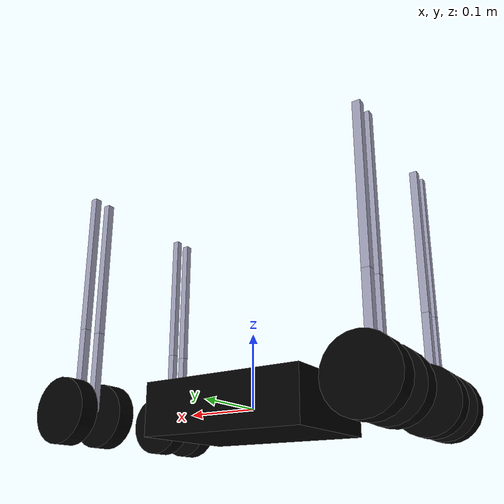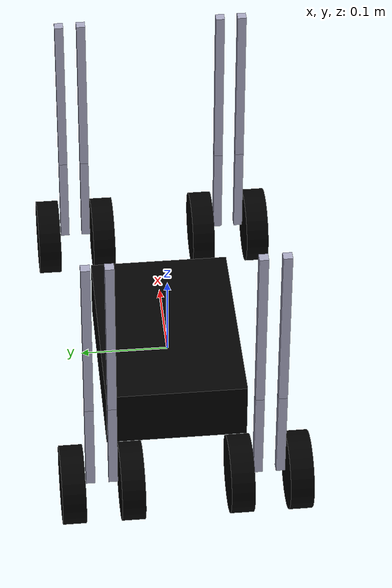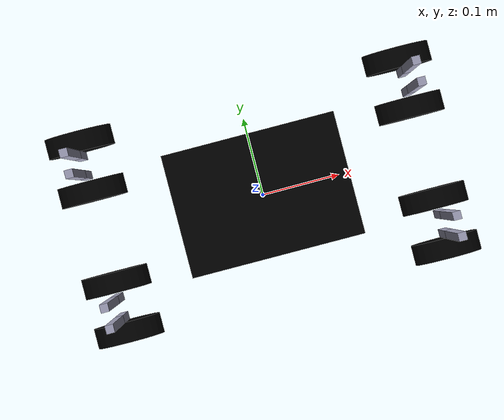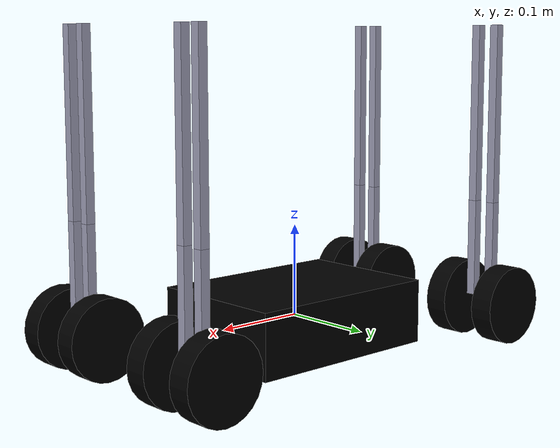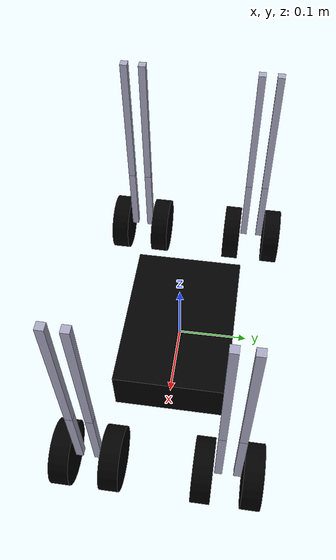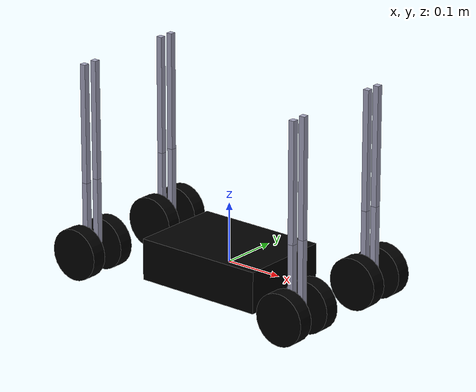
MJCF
<mujoco model="quadruped">
  <compiler angle="radian"/>

  <worldbody>
    <geom size="0.113 0.08 0.035" type="box" contype="0" conaffinity="0" group="1" density="0" rgba="0 0 0 1"/>
    <geom size="0.113 0.08 0.035" type="box" rgba="0 0 0 1"/>
    <body name="motor_front_rightR_link" pos="0.21 -0.125 0" quat="0.707123 0.70709 0 0">
      <inertial pos="0 0.01 -0.00333333" quat="0.811242 0.58471 0 0" mass="0.3" diaginertia="2.00017 2.00017 2"/>
      <joint name="motor_front_rightR_joint" pos="0 0 0" axis="0 0 1" actuatorfrcrange="-100 100"/>
      <geom size="0.0434 0.013" type="cylinder" contype="0" conaffinity="0" group="1" density="0" rgba="0 0 0 1"/>
      <geom size="0.0434 0.013" type="cylinder" rgba="0 0 0 1"/>
      <geom size="0.005 0.005 0.055" pos="0 0.06 -0.02" quat="0.707123 -0.70709 0 0" type="box" contype="0" conaffinity="0" group="1" density="0" rgba="0.65 0.65 0.75 1"/>
      <geom size="0.005 0.005 0.055" pos="0 0.06 -0.02" quat="0.707123 -0.70709 0 0" type="box" rgba="0.65 0.65 0.75 1"/>
      <body name="lower_leg_front_rightR_link" pos="0 0.115 -0.0199975" quat="0.707123 -0.70709 0 0">
        <inertial pos="0 0 0" mass="0.05" diaginertia="1 1 1"/>
        <joint name="knee_front_rightR_link" pos="0 0 0" axis="0 1 0" actuatorfrcrange="-100 100"/>
        <geom size="0.005 0.005 0.1" pos="0 0 0.1" type="box" contype="0" conaffinity="0" group="1" density="0" rgba="0.65 0.65 0.75 1"/>
        <geom size="0.005 0.005 0.1" pos="0 0 0.1" type="box" rgba="0.65 0.65 0.75 1"/>
      </body>
    </body>
    <body name="motor_front_rightL_link" pos="0.21 -0.06 0" quat="0.707123 0.70709 0 0">
      <inertial pos="0 0.01 0.00333333" quat="0.58471 0.811242 0 0" mass="0.3" diaginertia="2.00017 2.00017 2"/>
      <joint name="motor_front_rightL_joint" pos="0 0 0" axis="0 0 1" actuatorfrcrange="-100 100"/>
      <geom size="0.0434 0.013" type="cylinder" contype="0" conaffinity="0" group="1" density="0" rgba="0 0 0 1"/>
      <geom size="0.0434 0.013" type="cylinder" rgba="0 0 0 1"/>
      <geom size="0.005 0.005 0.055" pos="0 0.06 0.02" quat="0.707123 -0.70709 0 0" type="box" contype="0" conaffinity="0" group="1" density="0" rgba="0.65 0.65 0.75 1"/>
      <geom size="0.005 0.005 0.055" pos="0 0.06 0.02" quat="0.707123 -0.70709 0 0" type="box" rgba="0.65 0.65 0.75 1"/>
      <body name="lower_leg_front_rightL_link" pos="0 0.115 0.0200025" quat="0.707123 -0.70709 0 0">
        <inertial pos="0 0 0" mass="0.05" diaginertia="1 1 1"/>
        <joint name="knee_front_rightL_link" pos="0 0 0" axis="0 1 0" actuatorfrcrange="-100 100"/>
        <geom size="0.005 0.005 0.1" pos="0 0 0.1" type="box" contype="0" conaffinity="0" group="1" density="0" rgba="0.65 0.65 0.75 1"/>
        <geom size="0.005 0.005 0.1" pos="0 0 0.1" type="box" rgba="0.65 0.65 0.75 1"/>
      </body>
    </body>
    <body name="motor_front_leftR_link" pos="0.21 0.125 0" quat="0.707123 0.70709 0 0">
      <inertial pos="0 0.01 0.00333333" quat="0.58471 0.811242 0 0" mass="0.3" diaginertia="2.00017 2.00017 2"/>
      <joint name="motor_front_leftR_joint" pos="0 0 0" axis="0 0 1" actuatorfrcrange="-100 100"/>
      <geom size="0.0434 0.013" type="cylinder" contype="0" conaffinity="0" group="1" density="0" rgba="0 0 0 1"/>
      <geom size="0.0434 0.013" type="cylinder" rgba="0 0 0 1"/>
      <geom size="0.005 0.005 0.055" pos="0 0.06 0.02" quat="0.707123 -0.70709 0 0" type="box" contype="0" conaffinity="0" group="1" density="0" rgba="0.65 0.65 0.75 1"/>
      <geom size="0.005 0.005 0.055" pos="0 0.06 0.02" quat="0.707123 -0.70709 0 0" type="box" rgba="0.65 0.65 0.75 1"/>
      <body name="lower_leg_front_leftR_link" pos="0 0.115 0.0200025" quat="0.707123 -0.70709 0 0">
        <inertial pos="0 0 0" mass="0.05" diaginertia="1 1 1"/>
        <joint name="knee_front_leftR_link" pos="0 0 0" axis="0 1 0" actuatorfrcrange="-100 100"/>
        <geom size="0.005 0.005 0.1" pos="0 0 0.1" type="box" contype="0" conaffinity="0" group="1" density="0" rgba="0.65 0.65 0.75 1"/>
        <geom size="0.005 0.005 0.1" pos="0 0 0.1" type="box" rgba="0.65 0.65 0.75 1"/>
      </body>
    </body>
    <body name="motor_front_leftL_link" pos="0.21 0.06 0" quat="0.707123 0.70709 0 0">
      <inertial pos="0 0.01 -0.00333333" quat="0.811242 0.58471 0 0" mass="0.3" diaginertia="2.00017 2.00017 2"/>
      <joint name="motor_front_leftL_joint" pos="0 0 0" axis="0 0 1" actuatorfrcrange="-100 100"/>
      <geom size="0.0434 0.013" type="cylinder" contype="0" conaffinity="0" group="1" density="0" rgba="0 0 0 1"/>
      <geom size="0.0434 0.013" type="cylinder" rgba="0 0 0 1"/>
      <geom size="0.005 0.005 0.055" pos="0 0.06 -0.02" quat="0.707123 -0.70709 0 0" type="box" contype="0" conaffinity="0" group="1" density="0" rgba="0.65 0.65 0.75 1"/>
      <geom size="0.005 0.005 0.055" pos="0 0.06 -0.02" quat="0.707123 -0.70709 0 0" type="box" rgba="0.65 0.65 0.75 1"/>
      <body name="lower_leg_front_leftL_link" pos="0 0.115 -0.0199975" quat="0.707123 -0.70709 0 0">
        <inertial pos="0 0 0" mass="0.05" diaginertia="1 1 1"/>
        <joint name="knee_front_leftL_link" pos="0 0 0" axis="0 1 0" actuatorfrcrange="-100 100"/>
        <geom size="0.005 0.005 0.1" pos="0 0 0.1" type="box" contype="0" conaffinity="0" group="1" density="0" rgba="0.65 0.65 0.75 1"/>
        <geom size="0.005 0.005 0.1" pos="0 0 0.1" type="box" rgba="0.65 0.65 0.75 1"/>
      </body>
    </body>
    <body name="motor_back_rightR_link" pos="-0.21 -0.125 0" quat="0.707123 0.70709 0 0">
      <inertial pos="0 0.01 -0.00333333" quat="0.811242 0.58471 0 0" mass="0.3" diaginertia="2.00017 2.00017 2"/>
      <joint name="motor_back_rightR_joint" pos="0 0 0" axis="0 0 1" actuatorfrcrange="-100 100"/>
      <geom size="0.0434 0.013" type="cylinder" contype="0" conaffinity="0" group="1" density="0" rgba="0 0 0 1"/>
      <geom size="0.0434 0.013" type="cylinder" rgba="0 0 0 1"/>
      <geom size="0.005 0.005 0.055" pos="0 0.06 -0.02" quat="0.707123 -0.70709 0 0" type="box" contype="0" conaffinity="0" group="1" density="0" rgba="0.65 0.65 0.75 1"/>
      <geom size="0.005 0.005 0.055" pos="0 0.06 -0.02" quat="0.707123 -0.70709 0 0" type="box" rgba="0.65 0.65 0.75 1"/>
      <body name="lower_leg_back_rightR_link" pos="0 0.115 -0.0199975" quat="0.707123 -0.70709 0 0">
        <inertial pos="0 0 0" mass="0.05" diaginertia="1 1 1"/>
        <joint name="knee_back_rightR_link" pos="0 0 0" axis="0 1 0" actuatorfrcrange="-100 100"/>
        <geom size="0.005 0.005 0.1" pos="0 0 0.1" type="box" contype="0" conaffinity="0" group="1" density="0" rgba="0.65 0.65 0.75 1"/>
        <geom size="0.005 0.005 0.1" pos="0 0 0.1" type="box" rgba="0.65 0.65 0.75 1"/>
      </body>
    </body>
    <body name="motor_back_rightL_link" pos="-0.21 -0.06 0" quat="0.707123 0.70709 0 0">
      <inertial pos="0 0.01 0.00333333" quat="0.58471 0.811242 0 0" mass="0.3" diaginertia="2.00017 2.00017 2"/>
      <joint name="motor_back_rightL_joint" pos="0 0 0" axis="0 0 1" actuatorfrcrange="-100 100"/>
      <geom size="0.0434 0.013" type="cylinder" contype="0" conaffinity="0" group="1" density="0" rgba="0 0 0 1"/>
      <geom size="0.0434 0.013" type="cylinder" rgba="0 0 0 1"/>
      <geom size="0.005 0.005 0.055" pos="0 0.06 0.02" quat="0.707123 -0.70709 0 0" type="box" contype="0" conaffinity="0" group="1" density="0" rgba="0.65 0.65 0.75 1"/>
      <geom size="0.005 0.005 0.055" pos="0 0.06 0.02" quat="0.707123 -0.70709 0 0" type="box" rgba="0.65 0.65 0.75 1"/>
      <body name="lower_leg_back_rightL_link" pos="0 0.115 0.0200025" quat="0.707123 -0.70709 0 0">
        <inertial pos="0 0 0" mass="0.05" diaginertia="1 1 1"/>
        <joint name="knee_back_rightL_link" pos="0 0 0" axis="0 1 0" actuatorfrcrange="-100 100"/>
        <geom size="0.005 0.005 0.1" pos="0 0 0.1" type="box" contype="0" conaffinity="0" group="1" density="0" rgba="0.65 0.65 0.75 1"/>
        <geom size="0.005 0.005 0.1" pos="0 0 0.1" type="box" rgba="0.65 0.65 0.75 1"/>
      </body>
    </body>
    <body name="motor_back_leftR_link" pos="-0.21 0.125 0" quat="0.707123 0.70709 0 0">
      <inertial pos="0 0.01 0.00333333" quat="0.58471 0.811242 0 0" mass="0.3" diaginertia="2.00017 2.00017 2"/>
      <joint name="motor_back_leftR_joint" pos="0 0 0" axis="0 0 1" actuatorfrcrange="-100 100"/>
      <geom size="0.0434 0.013" type="cylinder" contype="0" conaffinity="0" group="1" density="0" rgba="0 0 0 1"/>
      <geom size="0.0434 0.013" type="cylinder" rgba="0 0 0 1"/>
      <geom size="0.005 0.005 0.055" pos="0 0.06 0.02" quat="0.707123 -0.70709 0 0" type="box" contype="0" conaffinity="0" group="1" density="0" rgba="0.65 0.65 0.75 1"/>
      <geom size="0.005 0.005 0.055" pos="0 0.06 0.02" quat="0.707123 -0.70709 0 0" type="box" rgba="0.65 0.65 0.75 1"/>
      <body name="lower_leg_back_leftR_link" pos="0 0.115 0.0200025" quat="0.707123 -0.70709 0 0">
        <inertial pos="0 0 0" mass="0.05" diaginertia="1 1 1"/>
        <joint name="knee_back_leftR_link" pos="0 0 0" axis="0 1 0" actuatorfrcrange="-100 100"/>
        <geom size="0.005 0.005 0.1" pos="0 0 0.1" type="box" contype="0" conaffinity="0" group="1" density="0" rgba="0.65 0.65 0.75 1"/>
        <geom size="0.005 0.005 0.1" pos="0 0 0.1" type="box" rgba="0.65 0.65 0.75 1"/>
      </body>
    </body>
    <body name="motor_back_leftL_link" pos="-0.21 0.06 0" quat="0.707123 0.70709 0 0">
      <inertial pos="0 0.01 -0.00333333" quat="0.811242 0.58471 0 0" mass="0.3" diaginertia="2.00017 2.00017 2"/>
      <joint name="motor_back_leftL_joint" pos="0 0 0" axis="0 0 1" actuatorfrcrange="-100 100"/>
      <geom size="0.0434 0.013" type="cylinder" contype="0" conaffinity="0" group="1" density="0" rgba="0 0 0 1"/>
      <geom size="0.0434 0.013" type="cylinder" rgba="0 0 0 1"/>
      <geom size="0.005 0.005 0.055" pos="0 0.06 -0.02" quat="0.707123 -0.70709 0 0" type="box" contype="0" conaffinity="0" group="1" density="0" rgba="0.65 0.65 0.75 1"/>
      <geom size="0.005 0.005 0.055" pos="0 0.06 -0.02" quat="0.707123 -0.70709 0 0" type="box" rgba="0.65 0.65 0.75 1"/>
      <body name="lower_leg_back_leftL_link" pos="0 0.115 -0.0199975" quat="0.707123 -0.70709 0 0">
        <inertial pos="0 0 0" mass="0.05" diaginertia="1 1 1"/>
        <joint name="knee_back_leftL_link" pos="0 0 0" axis="0 1 0" actuatorfrcrange="-100 100"/>
        <geom size="0.005 0.005 0.1" pos="0 0 0.1" type="box" contype="0" conaffinity="0" group="1" density="0" rgba="0.65 0.65 0.75 1"/>
        <geom size="0.005 0.005 0.1" pos="0 0 0.1" type="box" rgba="0.65 0.65 0.75 1"/>
      </body>
    </body>
  </worldbody>
</mujoco>
